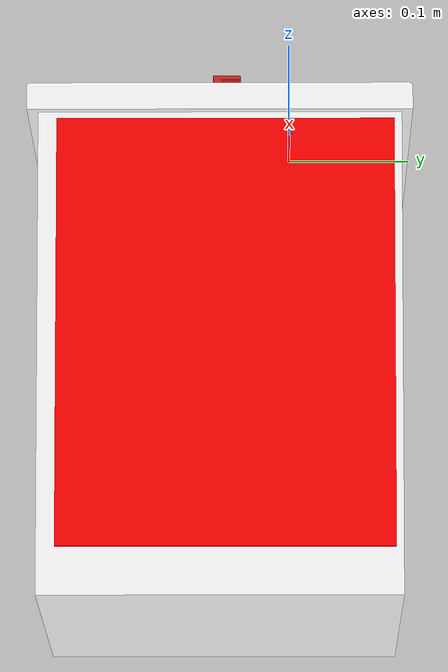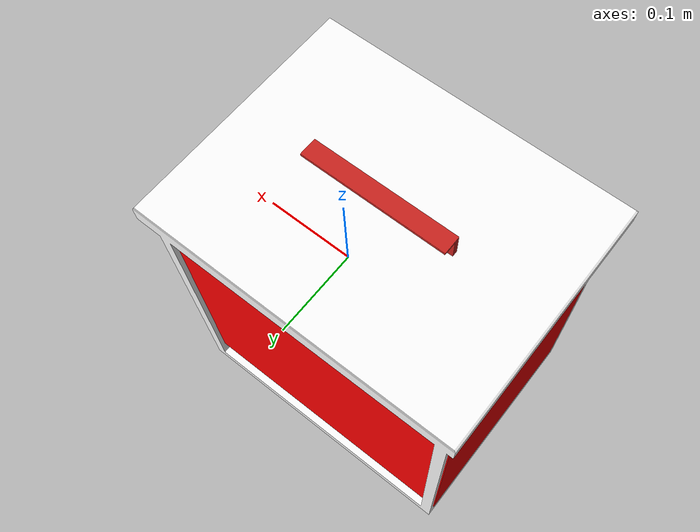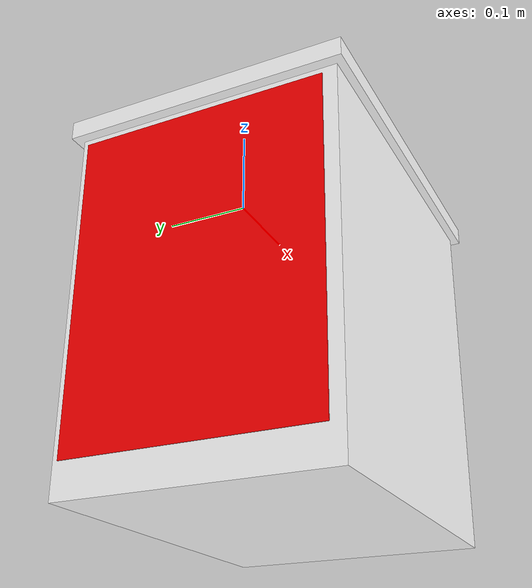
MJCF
<mujoco model="Drawer_f0dcbe39">
  <compiler autolimits="true" boundmass="0.01" angle="radian"/>
  <default>
    <default class="/">
      <default class="__VISUAL_MJT__">
        <geom contype="0" conaffinity="0" group="0"/>
      </default>
      <default class="__STRUCTURAL_MJT__">
        <geom contype="8" conaffinity="15" group="4" friction="0.90000000000000002 0.90000000000000002 0.001" solref="0.025000000000000001 1" solimp="0.998 0.998 0.001"/>
      </default>
      <default class="__DYNAMIC_MJT__">
        <geom contype="1" conaffinity="15" group="4" friction="0.90000000000000002 0.90000000000000002 0.001" solref="0.025000000000000001 1" solimp="0.998 0.998 0.001"/>
      </default>
    </default>
  </default>
  <asset>
    <material name="material_WhiteWoodClean" class="/" specular="0.5" shininess="0.5" rgba="1 1 1 1"/>
    <mesh name="Drawer_f0dcbe39_Mesh_01_37c0d761" class="/" file="Drawer_f0dcbe39_Mesh_01_37c0d761/Drawer_f0dcbe39_Mesh_01_37c0d761.obj" scale="1 1 1" inertia="legacy"/>
    <texture name="HammeredMetal_AlbedoTransparency_2" type="2d" file="HammeredMetal_AlbedoTransparency.png"/>
    <material name="material_HammeredMetal_AlbedoTransparency_2" class="/" texture="HammeredMetal_AlbedoTransparency_2" specular="0.5" shininess="0.5" rgba="1 0.93407709999999999 0.81617649999999997 1"/>
    <mesh name="Drawer_f0dcbe39_handle_3_178mm_01_611cb2dc" class="/" file="Drawer_f0dcbe39_handle_3_178mm_01_611cb2dc/Drawer_f0dcbe39_handle_3_178mm_01_611cb2dc.obj" scale="1 1 1" inertia="legacy"/>
  </asset>
  <worldbody>
    <body name="Drawer_f0dcbe39">
      <body name="Drawer_f0dcbe39_Mesh_01_37c0d761" pos="0.097000077366828918 -0.11100000143051147 0.00040005147457122803" quat="1 0 0 0">
        <geom name="Drawer_f0dcbe39_Mesh_01_37c0d761" class="__VISUAL_MJT__" type="mesh" material="material_WhiteWoodClean" mesh="Drawer_f0dcbe39_Mesh_01_37c0d761"/>
        <joint name="Drawer_f0dcbe39_joint" class="/" type="slide" pos="-0.097000055015087128 0.11100000143051147 -0.00040005129994824529" axis="0 0 1" stiffness="0" range="0 0.34300000000000003" damping="0.10000000000000001" frictionloss="0"/>
        <site name="Drawer_f0dcbe39_Mesh_01_37c0d761_Receptacle_0" class="/" type="box" rgba="1 0 0 1" size="0.19255086779594421 0.1357121616601944 0.17350441217422485" pos="-0.097706139087677002 0.059551358222961426 -0.18000032007694244" quat="0 1 0 0"/>
        <geom name="Drawer_f0dcbe39_Mesh_01_37c0d761_PrimitiveCollider_0" class="__DYNAMIC_MJT__" type="box" size="0.20489330589771271 0.15787263214588165 0.01138788741081953" rgba="0 1 0 1" pos="-0.097000069916248322 0.059707850217819214 0.01100088469684124" quat="0 1 0 0"/>
        <geom name="Drawer_f0dcbe39_Mesh_01_37c0d761_PrimitiveCollider_1" class="__DYNAMIC_MJT__" type="box" size="0.20489330589771271 0.1482732743024826 0.0073814410716295242" rgba="0 1 0 1" pos="-0.097000084817409515 0.051644414663314819 -0.3602624237537384" quat="0 1 0 0"/>
        <geom name="Drawer_f0dcbe39_Mesh_01_37c0d761_PrimitiveCollider_2" class="__DYNAMIC_MJT__" type="box" size="0.19288802146911621 0.14679811894893646 0.0063079716637730598" rgba="0 1 0 1" pos="-0.29469478130340576 0.053119570016860962 -0.1747736781835556" quat="0 0.70710678118654757 0 0.70710678118654757"/>
        <geom name="Drawer_f0dcbe39_Mesh_01_37c0d761_PrimitiveCollider_3" class="__DYNAMIC_MJT__" type="box" size="0.19288811087608337 0.14679811894893646 0.006307974923402071" rgba="0 1 0 1" pos="0.10028824955224991 0.053119570016860962 -0.17477360367774963" quat="0 0.70710678118654757 0 0.70710678118654757"/>
        <geom name="Drawer_f0dcbe39_Mesh_01_37c0d761_PrimitiveCollider_4" class="__DYNAMIC_MJT__" type="box" size="0.1928880512714386 0.20283517241477966 0.010606038384139538" rgba="0 1 0 1" pos="-0.097619861364364624 -0.086124658584594727 -0.17477358877658844" quat="-0.49999994039536055 0.49999999999999822 0.50000005960463589 0.49999999999999822"/>
        <body name="Drawer_f0dcbe39_handle_3_178mm_01_611cb2dc" pos="-0.094999991357326508 0.0520000159740448 0.019999997690320015" quat="1 0 0 0">
          <geom name="Drawer_f0dcbe39_handle_3_178mm_01_611cb2dc" class="__VISUAL_MJT__" type="mesh" material="material_HammeredMetal_AlbedoTransparency_2" mesh="Drawer_f0dcbe39_handle_3_178mm_01_611cb2dc"/>
          <geom name="Drawer_f0dcbe39_handle_3_178mm_01_611cb2dc_PrimitiveCollider_0" class="__DYNAMIC_MJT__" type="box" size="0.088752105832099915 0.0035549115855246782 0.016431532800197601" rgba="0 1 0 1" pos="1.9419132968323538e-09 0 0.016289951279759407" quat="0 1 0 0"/>
          <geom name="Drawer_f0dcbe39_handle_3_178mm_01_611cb2dc_PrimitiveCollider_1" class="__DYNAMIC_MJT__" type="box" size="0.088752105832099915 0.0077598136849701405 0.0019227261655032635" rgba="0 1 0 1" pos="-2.6130823727044117e-08 0.011284887790679932 0.030798796564340591" quat="0 1 0 0"/>
        </body>
      </body>
    </body>
  </worldbody>
  <contact>
    <exclude name="//unnamed_contact_0" body1="Drawer_f0dcbe39_Mesh_01_37c0d761" body2="Drawer_f0dcbe39_handle_3_178mm_01_611cb2dc"/>
  </contact>
</mujoco>
